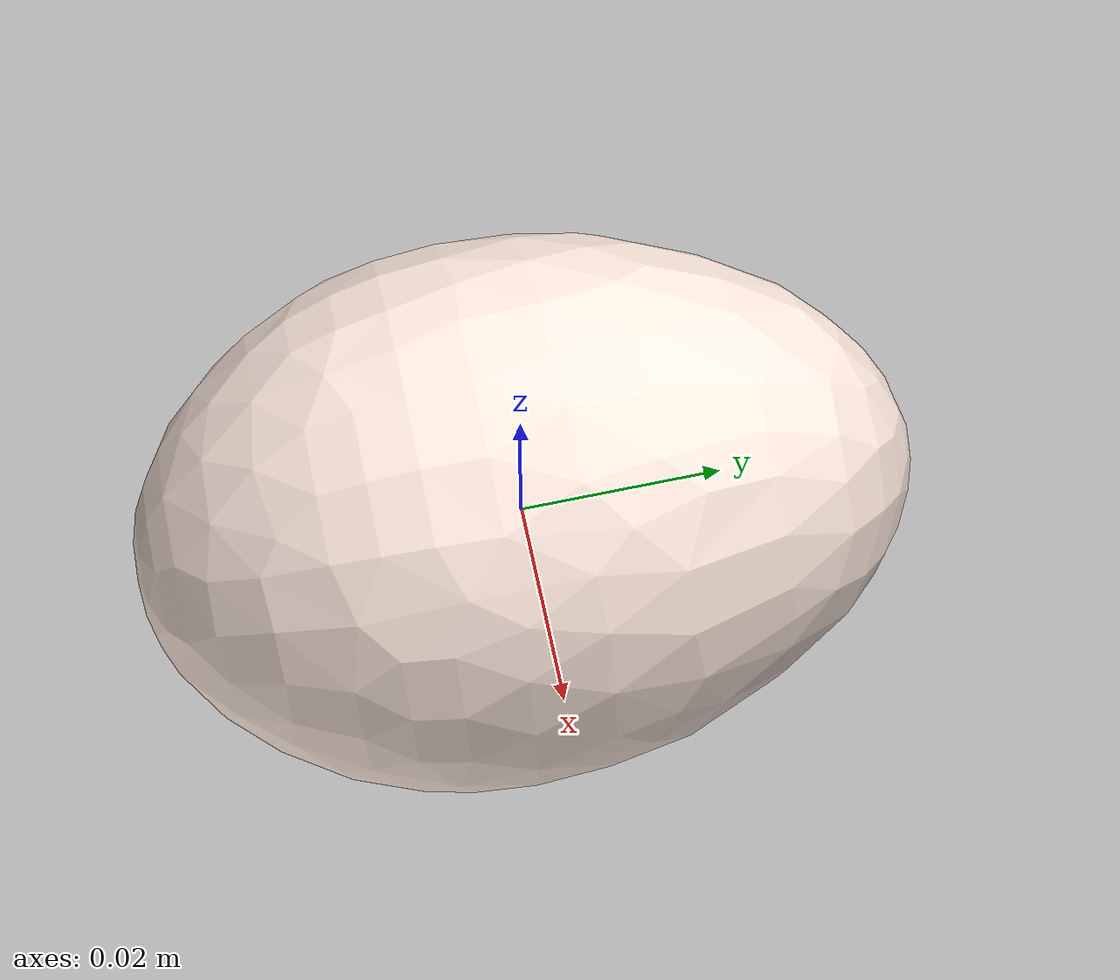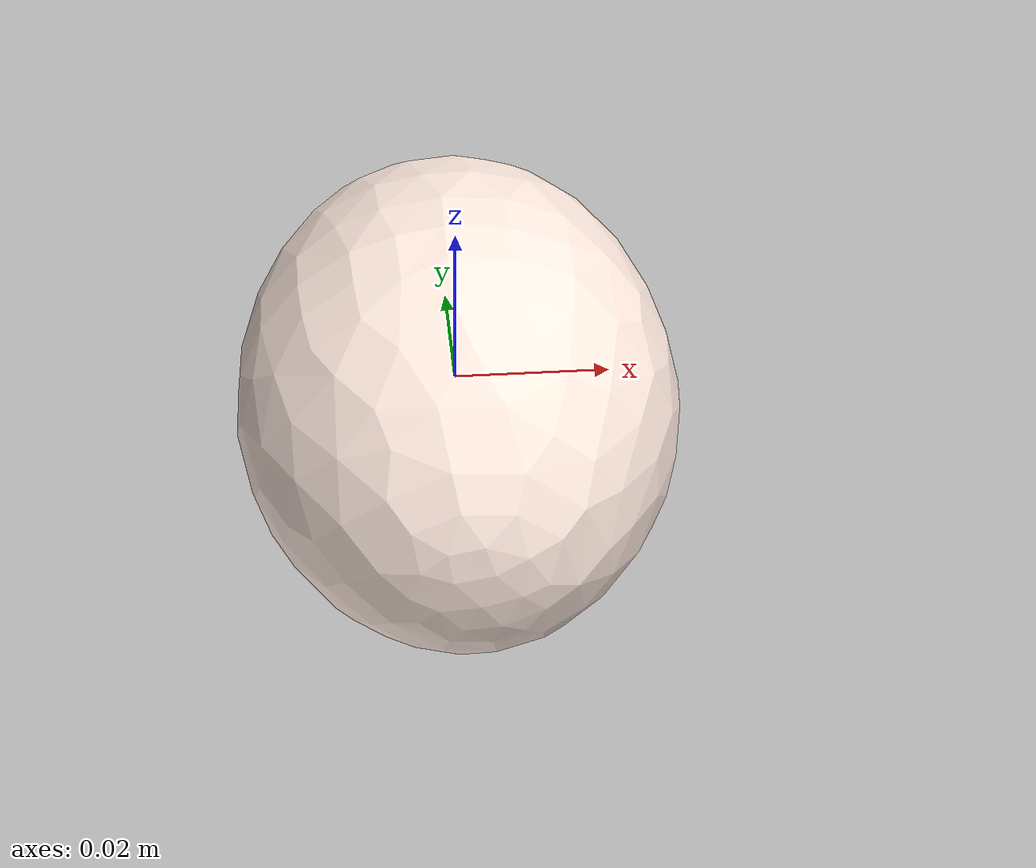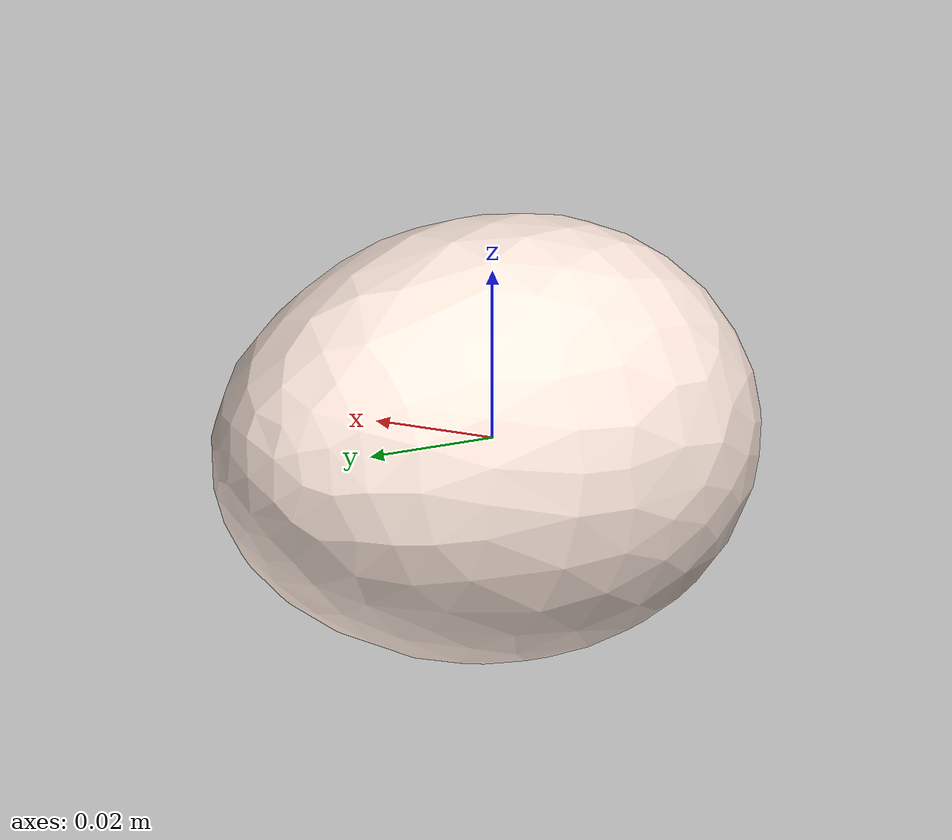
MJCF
<mujoco model="Egg_17">
  <compiler autolimits="true" boundmass="0.01" angle="radian"/>
  <default>
    <default class="/">
      <default class="__VISUAL_MJT__">
        <geom contype="0" conaffinity="0" group="0"/>
      </default>
      <default class="__STRUCTURAL_MJT__">
        <geom contype="8" conaffinity="15" group="4" friction="0.90000000000000002 0.90000000000000002 0.001" solref="0.025000000000000001 1" solimp="0.998 0.998 0.001"/>
      </default>
      <default class="__DYNAMIC_MJT__">
        <geom contype="1" conaffinity="15" group="4" friction="0.90000000000000002 0.90000000000000002 0.001" solref="0.025000000000000001 1" solimp="0.998 0.998 0.001"/>
      </default>
    </default>
  </default>
  <asset>
    <material name="material_Egg5_Mat" class="/" specular="0.5" shininess="0.5" rgba="1 0.91935489999999997 0.875 1"/>
    <mesh name="Egg_17_egg_17" class="/" file="Egg_17_egg_17/Egg_17_egg_17.obj" scale="1 1 1"/>
  </asset>
  <worldbody>
    <body name="Egg_17">
      <joint name="Egg_17_free" class="/" type="free" pos="0 0 0" axis="0 0 1" stiffness="0" range="0 0" armature="0" damping="0.10000000000000001" frictionloss="0"/>
      <body name="Egg_17_egg_17" pos="-0.00013999999999999999 0 -0.0001" quat="1 0 0 0">
        <geom name="Egg_17_egg_17" class="__VISUAL_MJT__" type="mesh" material="material_Egg5_Mat" shellinertia="true" mesh="Egg_17_egg_17"/>
        <geom name="Egg_17_PrimitiveCollider_0" class="__DYNAMIC_MJT__" type="capsule" size="0.024311143904924393 0.012910690158605576" rgba="0 1 0 1" pos="-0 0 0" quat="0.70710678118654757 0.70710678118654746 0 0"/>
      </body>
    </body>
  </worldbody>
</mujoco>
